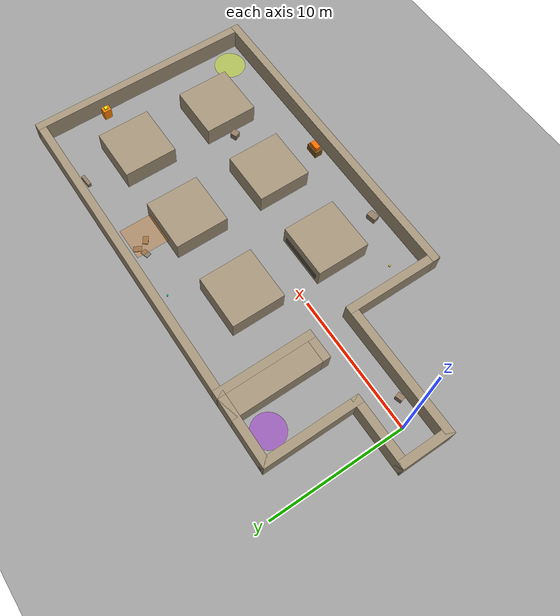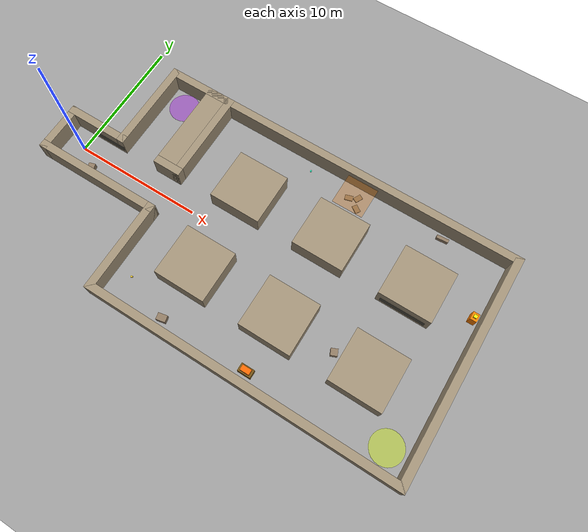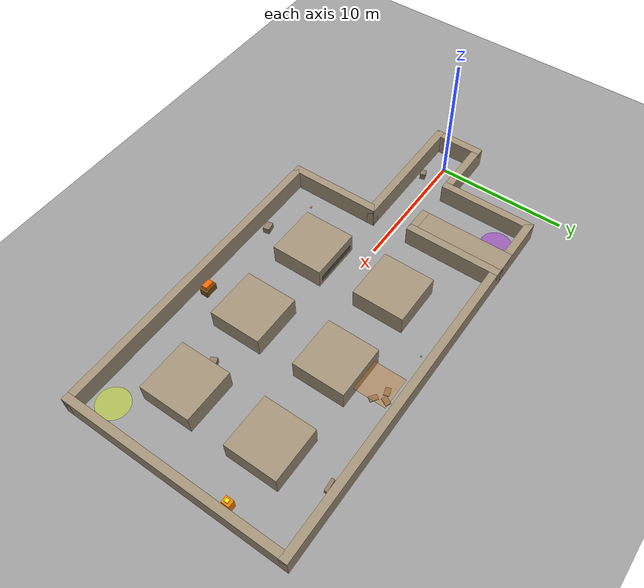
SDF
<?xml version="1.0"?>
<sdf version="1.9">
  <world name="contaminated_zone">

    <plugin filename="gz-sim-physics-system" name="gz::sim::systems::Physics"/>
    <plugin filename="gz-sim-scene-broadcaster-system" name="gz::sim::systems::SceneBroadcaster"/>
    <plugin filename="gz-sim-user-commands-system" name="gz::sim::systems::UserCommands"/>
    <plugin filename="gz-sim-sensors-system" name="gz::sim::systems::Sensors">
      <render_engine>ogre2</render_engine>
    </plugin>
    <plugin filename="gz-sim-imu-system" name="gz::sim::systems::Imu"/>

    <!-- 4 ms step: light on the CPU, smooth inside a VM -->
    <physics name="4ms" type="ignored">
      <max_step_size>0.004</max_step_size>
      <real_time_factor>1.0</real_time_factor>
    </physics>
    <gravity>0 0 -9.81</gravity>

    <light type="directional" name="sun">
      <cast_shadows>false</cast_shadows>
      <pose>0 0 10 0 0 0</pose>
      <diffuse>0.9 0.9 0.9 1</diffuse>
      <specular>0.2 0.2 0.2 1</specular>
      <direction>-0.5 0.3 -1</direction>
    </light>

    <model name="ground_plane">
      <static>true</static>
      <link name="link">
        <collision name="collision">
          <geometry><plane><normal>0 0 1</normal><size>60 60</size></plane></geometry>
          <surface><friction><ode><mu>1.0</mu><mu2>1.0</mu2></ode></friction></surface>
        </collision>
        <visual name="visual">
          <geometry><plane><normal>0 0 1</normal><size>60 60</size></plane></geometry>
          <material><ambient>0.4 0.4 0.4 1</ambient><diffuse>0.6 0.6 0.6 1</diffuse></material>
        </visual>
      </link>
    </model>

    <model name="rock_portal_gate">
      <static>true</static><pose>-1.800 0.000 0.800 0 0 0.0000</pose>
      <link name="link">
        <collision name="collision"><geometry><box><size>0.600 4.000 1.600</size></box></geometry></collision>
        <visual name="visual"><geometry><box><size>0.600 4.000 1.600</size></box></geometry>
          <material><ambient>0.50 0.45 0.37 1</ambient><diffuse>0.62 0.56 0.46 1</diffuse></material></visual>
      </link>
    </model>
    <model name="rock_drift_s">
      <static>true</static><pose>2.950 -1.700 0.800 0 0 0.0000</pose>
      <link name="link">
        <collision name="collision"><geometry><box><size>10.100 0.600 1.600</size></box></geometry></collision>
        <visual name="visual"><geometry><box><size>10.100 0.600 1.600</size></box></geometry>
          <material><ambient>0.50 0.45 0.37 1</ambient><diffuse>0.62 0.56 0.46 1</diffuse></material></visual>
      </link>
    </model>
    <model name="rock_drift_n_w">
      <static>true</static><pose>0.450 1.700 0.800 0 0 0.0000</pose>
      <link name="link">
        <collision name="collision"><geometry><box><size>5.100 0.600 1.600</size></box></geometry></collision>
        <visual name="visual"><geometry><box><size>5.100 0.600 1.600</size></box></geometry>
          <material><ambient>0.50 0.45 0.37 1</ambient><diffuse>0.62 0.56 0.46 1</diffuse></material></visual>
      </link>
    </model>
    <model name="rock_drift_n_e">
      <static>true</static><pose>6.900 1.700 0.800 0 0 0.0000</pose>
      <link name="link">
        <collision name="collision"><geometry><box><size>2.200 0.600 1.600</size></box></geometry></collision>
        <visual name="visual"><geometry><box><size>2.200 0.600 1.600</size></box></geometry>
          <material><ambient>0.50 0.45 0.37 1</ambient><diffuse>0.62 0.56 0.46 1</diffuse></material></visual>
      </link>
    </model>
    <model name="rock_deadend_w">
      <static>true</static><pose>2.700 5.100 0.800 0 0 0.0000</pose>
      <link name="link">
        <collision name="collision"><geometry><box><size>0.600 7.400 1.600</size></box></geometry></collision>
        <visual name="visual"><geometry><box><size>0.600 7.400 1.600</size></box></geometry>
          <material><ambient>0.50 0.45 0.37 1</ambient><diffuse>0.62 0.56 0.46 1</diffuse></material></visual>
      </link>
    </model>
    <model name="rock_deadend_e">
      <static>true</static><pose>6.600 5.400 0.800 0 0 0.0000</pose>
      <link name="link">
        <collision name="collision"><geometry><box><size>1.600 6.800 1.600</size></box></geometry></collision>
        <visual name="visual"><geometry><box><size>1.600 6.800 1.600</size></box></geometry>
          <material><ambient>0.50 0.45 0.37 1</ambient><diffuse>0.62 0.56 0.46 1</diffuse></material></visual>
      </link>
    </model>
    <model name="rock_deadend_end">
      <static>true</static><pose>4.900 8.500 0.800 0 0 0.0000</pose>
      <link name="link">
        <collision name="collision"><geometry><box><size>5.000 0.600 1.600</size></box></geometry></collision>
        <visual name="visual"><geometry><box><size>5.000 0.600 1.600</size></box></geometry>
          <material><ambient>0.50 0.45 0.37 1</ambient><diffuse>0.62 0.56 0.46 1</diffuse></material></visual>
      </link>
    </model>
    <model name="rock_panel_w_n">
      <static>true</static><pose>7.700 5.100 0.800 0 0 0.0000</pose>
      <link name="link">
        <collision name="collision"><geometry><box><size>0.600 7.400 1.600</size></box></geometry></collision>
        <visual name="visual"><geometry><box><size>0.600 7.400 1.600</size></box></geometry>
          <material><ambient>0.50 0.45 0.37 1</ambient><diffuse>0.62 0.56 0.46 1</diffuse></material></visual>
      </link>
    </model>
    <model name="rock_panel_w_s">
      <static>true</static><pose>7.700 -5.100 0.800 0 0 0.0000</pose>
      <link name="link">
        <collision name="collision"><geometry><box><size>0.600 7.400 1.600</size></box></geometry></collision>
        <visual name="visual"><geometry><box><size>0.600 7.400 1.600</size></box></geometry>
          <material><ambient>0.50 0.45 0.37 1</ambient><diffuse>0.62 0.56 0.46 1</diffuse></material></visual>
      </link>
    </model>
    <model name="rock_panel_n">
      <static>true</static><pose>19.600 8.500 0.800 0 0 0.0000</pose>
      <link name="link">
        <collision name="collision"><geometry><box><size>24.400 0.600 1.600</size></box></geometry></collision>
        <visual name="visual"><geometry><box><size>24.400 0.600 1.600</size></box></geometry>
          <material><ambient>0.50 0.45 0.37 1</ambient><diffuse>0.62 0.56 0.46 1</diffuse></material></visual>
      </link>
    </model>
    <model name="rock_panel_s">
      <static>true</static><pose>19.600 -8.500 0.800 0 0 0.0000</pose>
      <link name="link">
        <collision name="collision"><geometry><box><size>24.400 0.600 1.600</size></box></geometry></collision>
        <visual name="visual"><geometry><box><size>24.400 0.600 1.600</size></box></geometry>
          <material><ambient>0.50 0.45 0.37 1</ambient><diffuse>0.62 0.56 0.46 1</diffuse></material></visual>
      </link>
    </model>
    <model name="rock_panel_e">
      <static>true</static><pose>31.500 0.000 0.800 0 0 0.0000</pose>
      <link name="link">
        <collision name="collision"><geometry><box><size>0.600 17.600 1.600</size></box></geometry></collision>
        <visual name="visual"><geometry><box><size>0.600 17.600 1.600</size></box></geometry>
          <material><ambient>0.50 0.45 0.37 1</ambient><diffuse>0.62 0.56 0.46 1</diffuse></material></visual>
      </link>
    </model>
    <model name="pillar_1">
      <static>true</static><pose>12.800 3.400 0.800 0 0 0.0000</pose>
      <link name="link">
        <collision name="collision"><geometry><box><size>4.000 4.000 1.600</size></box></geometry></collision>
        <visual name="visual"><geometry><box><size>4.000 4.000 1.600</size></box></geometry>
          <material><ambient>0.50 0.45 0.37 1</ambient><diffuse>0.62 0.56 0.46 1</diffuse></material></visual>
      </link>
    </model>
    <model name="pillar_2">
      <static>true</static><pose>19.600 3.400 0.800 0 0 0.0000</pose>
      <link name="link">
        <collision name="collision"><geometry><box><size>4.000 4.000 1.600</size></box></geometry></collision>
        <visual name="visual"><geometry><box><size>4.000 4.000 1.600</size></box></geometry>
          <material><ambient>0.50 0.45 0.37 1</ambient><diffuse>0.62 0.56 0.46 1</diffuse></material></visual>
      </link>
    </model>
    <model name="pillar_3">
      <static>true</static><pose>26.400 3.400 0.800 0 0 0.0000</pose>
      <link name="link">
        <collision name="collision"><geometry><box><size>4.000 4.000 1.600</size></box></geometry></collision>
        <visual name="visual"><geometry><box><size>4.000 4.000 1.600</size></box></geometry>
          <material><ambient>0.50 0.45 0.37 1</ambient><diffuse>0.62 0.56 0.46 1</diffuse></material></visual>
      </link>
    </model>
    <model name="pillar_4">
      <static>true</static><pose>12.800 -3.400 0.800 0 0 0.0000</pose>
      <link name="link">
        <collision name="collision"><geometry><box><size>4.000 4.000 1.600</size></box></geometry></collision>
        <visual name="visual"><geometry><box><size>4.000 4.000 1.600</size></box></geometry>
          <material><ambient>0.50 0.45 0.37 1</ambient><diffuse>0.62 0.56 0.46 1</diffuse></material></visual>
      </link>
    </model>
    <model name="pillar_5">
      <static>true</static><pose>19.600 -3.400 0.800 0 0 0.0000</pose>
      <link name="link">
        <collision name="collision"><geometry><box><size>4.000 4.000 1.600</size></box></geometry></collision>
        <visual name="visual"><geometry><box><size>4.000 4.000 1.600</size></box></geometry>
          <material><ambient>0.50 0.45 0.37 1</ambient><diffuse>0.62 0.56 0.46 1</diffuse></material></visual>
      </link>
    </model>
    <model name="pillar_6">
      <static>true</static><pose>26.400 -3.400 0.800 0 0 0.0000</pose>
      <link name="link">
        <collision name="collision"><geometry><box><size>4.000 4.000 1.600</size></box></geometry></collision>
        <visual name="visual"><geometry><box><size>4.000 4.000 1.600</size></box></geometry>
          <material><ambient>0.50 0.45 0.37 1</ambient><diffuse>0.62 0.56 0.46 1</diffuse></material></visual>
      </link>
    </model>
    <model name="rubble_drift">
      <static>true</static><pose>1.600 -1.000 0.250 0 0 0.3000</pose>
      <link name="link">
        <collision name="collision"><geometry><box><size>0.500 0.400 0.500</size></box></geometry></collision>
        <visual name="visual"><geometry><box><size>0.500 0.400 0.500</size></box></geometry>
          <material><ambient>0.45 0.38 0.30 1</ambient><diffuse>0.55 0.47 0.38 1</diffuse></material></visual>
      </link>
    </model>
    <model name="rubble_south">
      <static>true</static><pose>12.800 -7.600 0.250 0 0 0.2000</pose>
      <link name="link">
        <collision name="collision"><geometry><box><size>0.700 0.500 0.500</size></box></geometry></collision>
        <visual name="visual"><geometry><box><size>0.700 0.500 0.500</size></box></geometry>
          <material><ambient>0.45 0.38 0.30 1</ambient><diffuse>0.55 0.47 0.38 1</diffuse></material></visual>
      </link>
    </model>
    <model name="rubble_col23">
      <static>true</static><pose>23.900 -3.400 0.250 0 0 0.4000</pose>
      <link name="link">
        <collision name="collision"><geometry><box><size>0.500 0.500 0.500</size></box></geometry></collision>
        <visual name="visual"><geometry><box><size>0.500 0.500 0.500</size></box></geometry>
          <material><ambient>0.45 0.38 0.30 1</ambient><diffuse>0.55 0.47 0.38 1</diffuse></material></visual>
      </link>
    </model>
    <model name="timber_north">
      <static>true</static><pose>26.400 7.750 0.175 0 0 0.0800</pose>
      <link name="link">
        <collision name="collision"><geometry><box><size>0.900 0.250 0.350</size></box></geometry></collision>
        <visual name="visual"><geometry><box><size>0.900 0.250 0.350</size></box></geometry>
          <material><ambient>0.45 0.38 0.30 1</ambient><diffuse>0.55 0.47 0.38 1</diffuse></material></visual>
      </link>
    </model>
    <model name="deco_radon_deadend">
      <static>true</static><pose>4.400 7.000 0.01 0 0 0</pose>
      <link name="link">
        <visual name="visual"><geometry><cylinder><radius>1.20</radius><length>0.02</length></cylinder></geometry>
          <material><ambient>0.5 0.1 0.6 1</ambient><diffuse>0.6 0.2 0.8 1</diffuse></material><transparency>0.45</transparency></visual>
      </link>
    </model>
    <model name="deco_bad_air_east">
      <static>true</static><pose>29.800 -6.800 0.01 0 0 0</pose>
      <link name="link">
        <visual name="visual"><geometry><cylinder><radius>1.20</radius><length>0.02</length></cylinder></geometry>
          <material><ambient>0.6 0.7 0.1 1</ambient><diffuse>0.75 0.85 0.15 1</diffuse></material><transparency>0.45</transparency></visual>
      </link>
    </model>
    <model name="mine_loader_fire_loader">
      <static>true</static><pose>19.600 -7.550 0.300 0 0 0.0000</pose>
      <link name="link">
        <collision name="collision"><geometry><box><size>1.000 0.600 0.600</size></box></geometry></collision>
        <visual name="visual"><geometry><box><size>1.000 0.600 0.600</size></box></geometry>
          <material><ambient>0.35 0.25 0.05 1</ambient><diffuse>0.45 0.32 0.08 1</diffuse></material></visual>
      </link>
    </model>
    <model name="deco_fire_loader_flames">
      <static>true</static><pose>19.600 -7.550 0.750 0 0 0.0000</pose>
      <link name="link">
        <visual name="visual"><geometry><box><size>0.700 0.400 0.300</size></box></geometry>
          <material><ambient>0.9 0.3 0.0 1</ambient><diffuse>1.0 0.4 0.0 1</diffuse><emissive>1.0 0.35 0.0 1</emissive></material></visual>
      </link>
    </model>
    <model name="deco_roof_north_slab0">
      <static>true</static><pose>19.100 7.100 0.040 0 0 0.3000</pose>
      <link name="link">
        <visual name="visual"><geometry><box><size>0.600 0.400 0.080</size></box></geometry>
          <material><ambient>0.40 0.36 0.30 1</ambient><diffuse>0.5 0.45 0.38 1</diffuse></material></visual>
      </link>
    </model>
    <model name="deco_roof_north_slab1">
      <static>true</static><pose>20.000 6.600 0.040 0 0 -0.6000</pose>
      <link name="link">
        <visual name="visual"><geometry><box><size>0.600 0.400 0.080</size></box></geometry>
          <material><ambient>0.40 0.36 0.30 1</ambient><diffuse>0.5 0.45 0.38 1</diffuse></material></visual>
      </link>
    </model>
    <model name="deco_roof_north_slab2">
      <static>true</static><pose>19.700 7.400 0.040 0 0 1.1000</pose>
      <link name="link">
        <visual name="visual"><geometry><box><size>0.600 0.400 0.080</size></box></geometry>
          <material><ambient>0.40 0.36 0.30 1</ambient><diffuse>0.5 0.45 0.38 1</diffuse></material></visual>
      </link>
    </model>
    <model name="deco_roof_north_warning">
      <static>true</static><pose>19.600 6.800 1.500 0 0 0.0000</pose>
      <link name="link">
        <visual name="visual"><geometry><box><size>2.400 2.400 0.030</size></box></geometry>
          <material><ambient>0.6 0.3 0.0 1</ambient><diffuse>0.8 0.4 0.0 1</diffuse></material><transparency>0.7</transparency></visual>
      </link>
    </model>
    <model name="victim_miner_1">
      <static>true</static><pose>30.750 3.600 0.450 0 0 0.0000</pose>
      <link name="link">
        <collision name="collision"><geometry><box><size>0.500 0.600 0.900</size></box></geometry></collision>
        <visual name="visual"><geometry><box><size>0.500 0.600 0.900</size></box></geometry>
          <material><ambient>0.9 0.45 0.0 1</ambient><diffuse>1.0 0.5 0.0 1</diffuse></material></visual>
      </link>
    </model>
    <model name="deco_miner_1_helmet">
      <static>true</static><pose>30.750 3.600 0.970 0 0 0.0000</pose>
      <link name="link">
        <visual name="visual"><geometry><box><size>0.250 0.250 0.140</size></box></geometry>
          <material><ambient>0.9 0.8 0.0 1</ambient><diffuse>1.0 0.9 0.0 1</diffuse></material></visual>
      </link>
    </model>
    <model name="deco_seam_rich">
      <static>true</static><pose>26.400 1.385 0.600 0 0 0.0000</pose>
      <link name="link">
        <visual name="visual"><geometry><box><size>3.400 0.030 0.450</size></box></geometry>
          <material><ambient>0.25 0.25 0.22 1</ambient><diffuse>0.32 0.31 0.27 1</diffuse></material></visual>
      </link>
    </model>
    <model name="deco_seam_medium">
      <static>true</static><pose>12.800 -1.385 0.600 0 0 0.0000</pose>
      <link name="link">
        <visual name="visual"><geometry><box><size>3.400 0.030 0.450</size></box></geometry>
          <material><ambient>0.25 0.25 0.22 1</ambient><diffuse>0.32 0.31 0.27 1</diffuse></material></visual>
      </link>
    </model>
    <model name="deco_seam_poor">
      <static>true</static><pose>1.650 1.385 0.600 0 0 0.0000</pose>
      <link name="link">
        <visual name="visual"><geometry><box><size>2.500 0.030 0.450</size></box></geometry>
          <material><ambient>0.25 0.25 0.22 1</ambient><diffuse>0.32 0.31 0.27 1</diffuse></material></visual>
      </link>
    </model>
    <model name="deco_gold_demo">
      <static>true</static><pose>9.200 -6.300 0.060 0 0 0.4000</pose>
      <link name="link">
        <visual name="visual"><geometry><box><size>0.150 0.100 0.120</size></box></geometry>
          <material><ambient>0.8 0.6 0.1 1</ambient><diffuse>1.0 0.8 0.2 1</diffuse><emissive>0.5 0.4 0.05 1</emissive></material></visual>
      </link>
    </model>
    <model name="deco_gem_demo">
      <static>true</static><pose>15.600 7.500 0.050 0 0 0.7000</pose>
      <link name="link">
        <visual name="visual"><geometry><box><size>0.100 0.100 0.100</size></box></geometry>
          <material><ambient>0.0 0.6 0.5 1</ambient><diffuse>0.1 0.9 0.7 1</diffuse><emissive>0.0 0.4 0.3 1</emissive></material></visual>
      </link>
    </model>

  </world>
</sdf>
